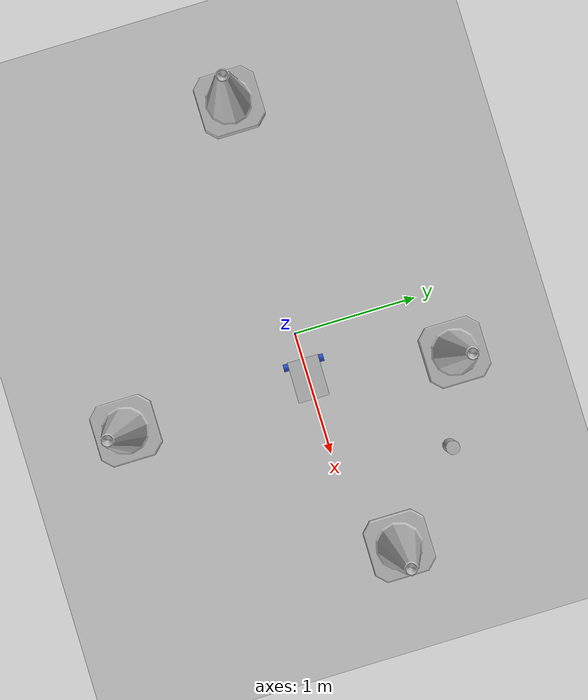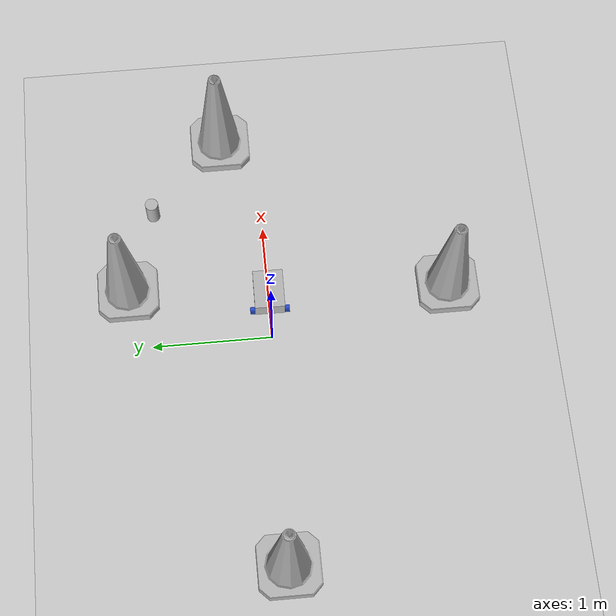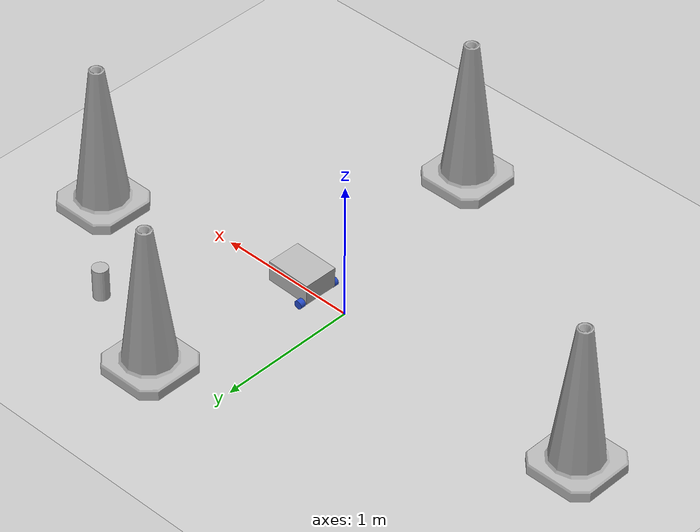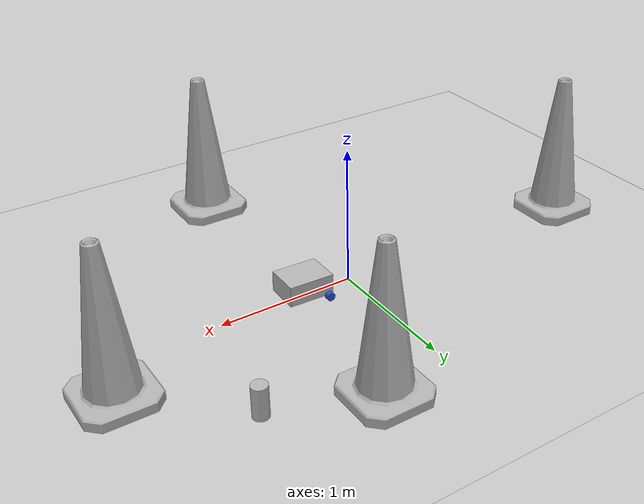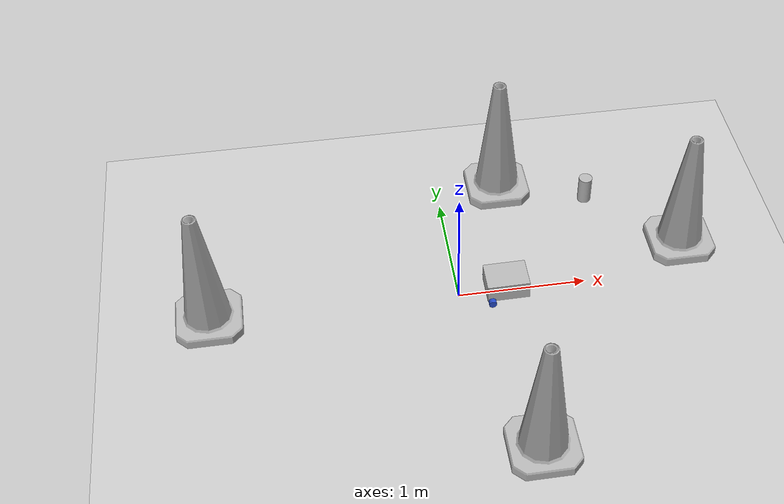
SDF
<sdf version="1.7">
 <world name="default">
  <light name="sun" type="directional">
   <pose>0 0 10 0 -0 0</pose>
   <diffuse>0.8 0.8 0.8 1</diffuse>
   <specular>0.2 0.2 0.2 1</specular>
   <attenuation>
    <range>1000</range>
    <constant>0.9</constant>
    <linear>0.01</linear>
    <quadratic>0.001</quadratic>
   </attenuation>
   <direction>-0.5 0.1 -0.9</direction>
   <spot><inner_angle>0</inner_angle><outer_angle>0</outer_angle><falloff>0</falloff></spot>
  </light>
  <model name="ground_plane">
   <static>1</static>
   <link name="link">
    <collision name="collision">
     <geometry><plane><normal>0 0 1</normal><size>100 100</size></plane></geometry>
     <surface>
      <contact><collide_bitmask>65535</collide_bitmask></contact>
      <friction><ode><mu>100</mu><mu2>50</mu2></ode></friction>
     </surface>
    </collision>
    <visual name="visual">
     <cast_shadows>0</cast_shadows>
     <geometry><plane><normal>0 0 1</normal><size>100 100</size></plane></geometry>
     <material>
      <script><uri>file://media/materials/scripts/gazebo.material</uri><name>Gazebo/Grey</name></script>
     </material>
    </visual>
   </link>
  </model>
  <gravity>0 0 -9.8</gravity>
  <magnetic_field>6e-06 2.3e-05 -4.2e-05</magnetic_field>
  <atmosphere type="adiabatic"/>
  <physics type="ode">
   <max_step_size>0.001</max_step_size>
   <real_time_factor>1</real_time_factor>
   <real_time_update_rate>1000</real_time_update_rate>
  </physics>
  <scene><ambient>0.4 0.4 0.4 1</ambient><background>0.7 0.7 0.7 1</background><shadows>1</shadows></scene>
  <spherical_coordinates>
   <surface_model>EARTH_WGS84</surface_model>
   <latitude_deg>0</latitude_deg>
   <longitude_deg>0</longitude_deg>
   <elevation>0</elevation>
   <heading_deg>0</heading_deg>
  </spherical_coordinates>
  <model name="my_bot">
   <link name="base_link">
    <inertial>
     <pose>0.132742 0 0.072581 0 -0 0</pose>
     <mass>3.1</mass>
     <inertia>
      <ixx>0.0206694</ixx>
      <ixy>0</ixy>
      <ixz>0.000616935</ixz>
      <iyy>0.0341935</iyy>
      <iyz>0</iyz>
      <izz>0.0424242</izz>
     </inertia>
    </inertial>
    <collision name="base_link_fixed_joint_lump__chassis_collision">
     <pose>0.13 0 0.075 0 -0 0</pose>
     <geometry><box><size>0.33 0.25 0.15</size></box></geometry>
    </collision>
    <collision name="base_link_fixed_joint_lump__caster_wheel_collision_1">
     <pose>0.215 0 0 0 -0 0</pose>
     <geometry><sphere><radius>0.035</radius></sphere></geometry>
     <surface><friction><ode><mu>0.001</mu><mu2>0.001</mu2></ode></friction></surface>
    </collision>
    <visual name="base_link_fixed_joint_lump__chassis_visual">
     <pose>0.13 0 0.075 0 -0 0</pose>
     <geometry><box><size>0.33 0.25 0.15</size></box></geometry>
    </visual>
    <visual name="base_link_fixed_joint_lump__caster_wheel_visual_1">
     <pose>0.215 0 0 0 -0 0</pose>
     <geometry><sphere><radius>0.035</radius></sphere></geometry>
     <material>
      <script><name>Gazebo/Black</name><uri>file://media/materials/scripts/gazebo.material</uri></script>
     </material>
    </visual>
   </link>
   <joint name="left_wheel_joint" type="revolute">
    <pose relative_to="base_link">0 0.145 0 -1.5708 0 0</pose>
    <parent>base_link</parent>
    <child>left_wheel</child>
    <axis>
     <xyz>0 0 1</xyz>
     <limit><lower>-1e+16</lower><upper>1e+16</upper></limit>
     <dynamics><spring_reference>0</spring_reference><spring_stiffness>0</spring_stiffness></dynamics>
    </axis>
   </joint>
   <link name="left_wheel">
    <pose relative_to="left_wheel_joint">0 0 0 0 -0 0</pose>
    <inertial>
     <mass>0.1</mass>
     <inertia>
      <ixx>3.58333e-05</ixx>
      <ixy>0</ixy>
      <ixz>0</ixz>
      <iyy>3.58333e-05</iyy>
      <iyz>0</iyz>
      <izz>4.5e-05</izz>
     </inertia>
    </inertial>
    <collision name="left_wheel_collision">
     <geometry><cylinder><length>0.04</length><radius>0.03</radius></cylinder></geometry>
    </collision>
    <visual name="left_wheel_visual">
     <geometry><cylinder><length>0.04</length><radius>0.03</radius></cylinder></geometry>
     <material>
      <script><name>Gazebo/Blue</name><uri>file://media/materials/scripts/gazebo.material</uri></script>
     </material>
    </visual>
   </link>
   <joint name="right_wheel_joint" type="revolute">
    <pose relative_to="base_link">0 -0.145 0 1.5708 -0 0</pose>
    <parent>base_link</parent>
    <child>right_wheel</child>
    <axis>
     <xyz>0 0 -1</xyz>
     <limit><lower>-1e+16</lower><upper>1e+16</upper></limit>
     <dynamics><spring_reference>0</spring_reference><spring_stiffness>0</spring_stiffness></dynamics>
    </axis>
   </joint>
   <link name="right_wheel">
    <pose relative_to="right_wheel_joint">0 0 0 0 -0 0</pose>
    <inertial>
     <mass>0.1</mass>
     <inertia>
      <ixx>3.58333e-05</ixx>
      <ixy>0</ixy>
      <ixz>0</ixz>
      <iyy>3.58333e-05</iyy>
      <iyz>0</iyz>
      <izz>4.5e-05</izz>
     </inertia>
    </inertial>
    <collision name="right_wheel_collision">
     <geometry><cylinder><length>0.04</length><radius>0.03</radius></cylinder></geometry>
    </collision>
    <visual name="right_wheel_visual">
     <geometry><cylinder><length>0.04</length><radius>0.03</radius></cylinder></geometry>
     <material>
      <script><name>Gazebo/Blue</name><uri>file://media/materials/scripts/gazebo.material</uri></script>
     </material>
    </visual>
   </link>
   <static>0</static>
   <plugin name="diff_drive" filename="libgazebo_ros_diff_drive.so">
    <left_joint>left_wheel_joint</left_joint>
    <right_joint>right_wheel_joint</right_joint>
    <wheel_separation>0.29</wheel_separation>
    <wheel_diameter>0.06</wheel_diameter>
    <max_wheel_torque>200</max_wheel_torque>
    <max_wheel_acceleration>10.0</max_wheel_acceleration>
    <odometry_frame>odom</odometry_frame>
    <robot_base_frame>base_link</robot_base_frame>
    <publish_odom>1</publish_odom>
    <publish_odom_tf>1</publish_odom_tf>
    <publish_wheel_tf>1</publish_wheel_tf>
   </plugin>
   <pose>0.243344 -0.000251 0.029997 2.4e-05 -0.023272 -0.010403</pose>
  </model>
  <model name="Construction Cone">
   <link name="link">
    <collision name="collision">
     <geometry>
      <mesh><scale>10 10 10</scale><uri>model://construction_cone/meshes/construction_cone.dae</uri></mesh>
     </geometry>
    </collision>
    <visual name="visual">
     <geometry>
      <mesh><scale>10 10 10</scale><uri>model://construction_cone/meshes/construction_cone.dae</uri></mesh>
     </geometry>
    </visual>
    <inertial>
     <inertia><ixx>1</ixx><ixy>0</ixy><ixz>0</ixz><iyy>1</iyy><iyz>0</iyz><izz>1</izz></inertia>
     <mass>1</mass>
    </inertial>
   </link>
   <pose>0.509744 1.17417 0 -0 -0 -0</pose>
  </model>
  <model name="Construction Cone_0">
   <link name="link">
    <collision name="collision">
     <geometry>
      <mesh><scale>10 10 10</scale><uri>model://construction_cone/meshes/construction_cone.dae</uri></mesh>
     </geometry>
    </collision>
    <visual name="visual">
     <geometry>
      <mesh><scale>10 10 10</scale><uri>model://construction_cone/meshes/construction_cone.dae</uri></mesh>
     </geometry>
    </visual>
    <inertial>
     <inertia><ixx>1</ixx><ixy>0</ixy><ixz>0</ixz><iyy>1</iyy><iyz>0</iyz><izz>1</izz></inertia>
     <mass>1</mass>
    </inertial>
   </link>
   <pose>1.85417 0.306575 -0 0 0 -0.002006</pose>
  </model>
  <model name="Construction Cone_1">
   <link name="link">
    <collision name="collision">
     <geometry>
      <mesh><scale>10 10 10</scale><uri>model://construction_cone/meshes/construction_cone.dae</uri></mesh>
     </geometry>
    </collision>
    <visual name="visual">
     <geometry>
      <mesh><scale>10 10 10</scale><uri>model://construction_cone/meshes/construction_cone.dae</uri></mesh>
     </geometry>
    </visual>
    <inertial>
     <inertia><ixx>1</ixx><ixy>0</ixy><ixz>0</ixz><iyy>1</iyy><iyz>0</iyz><izz>1</izz></inertia>
     <mass>1</mass>
    </inertial>
   </link>
   <pose>0.350123 -1.50958 -6e-06 -4e-06 0 0</pose>
  </model>
  <model name="Construction Cone_2">
   <link name="link">
    <collision name="collision">
     <geometry>
      <mesh><scale>10 10 10</scale><uri>model://construction_cone/meshes/construction_cone.dae</uri></mesh>
     </geometry>
    </collision>
    <visual name="visual">
     <geometry>
      <mesh><scale>10 10 10</scale><uri>model://construction_cone/meshes/construction_cone.dae</uri></mesh>
     </geometry>
    </visual>
    <inertial>
     <inertia><ixx>1</ixx><ixy>0</ixy><ixz>0</ixz><iyy>1</iyy><iyz>0</iyz><izz>1</izz></inertia>
     <mass>1</mass>
    </inertial>
   </link>
   <pose>-1.92196 0.034911 -0 0 -0 0</pose>
  </model>
  <model name="beer">
   <link name="link">
    <pose>0 0 0.115 0 -0 0</pose>
    <inertial>
     <mass>0.39</mass>
     <inertia><ixx>0.00058</ixx><ixy>0</ixy><ixz>0</ixz><iyy>0.00058</iyy><iyz>0</iyz><izz>0.00019</izz></inertia>
    </inertial>
    <collision name="collision">
     <geometry><cylinder><radius>0.055</radius><length>0.23</length></cylinder></geometry>
    </collision>
    <visual name="visual">
     <geometry><cylinder><radius>0.055</radius><length>0.23</length></cylinder></geometry>
     <material>
      <script>
       <uri>model://beer/materials/scripts</uri>
       <uri>model://beer/materials/textures</uri>
       <name>Beer/Diffuse</name>
      </script>
     </material>
    </visual>
   </link>
   <pose>1.21043 0.924884 -2e-06 1e-06 -0 -1e-06</pose>
  </model>
 </world>
</sdf>
